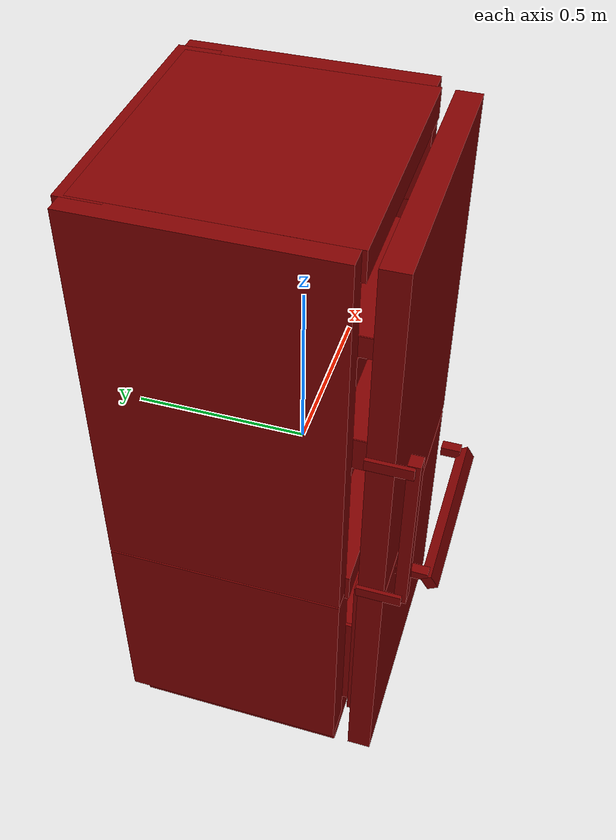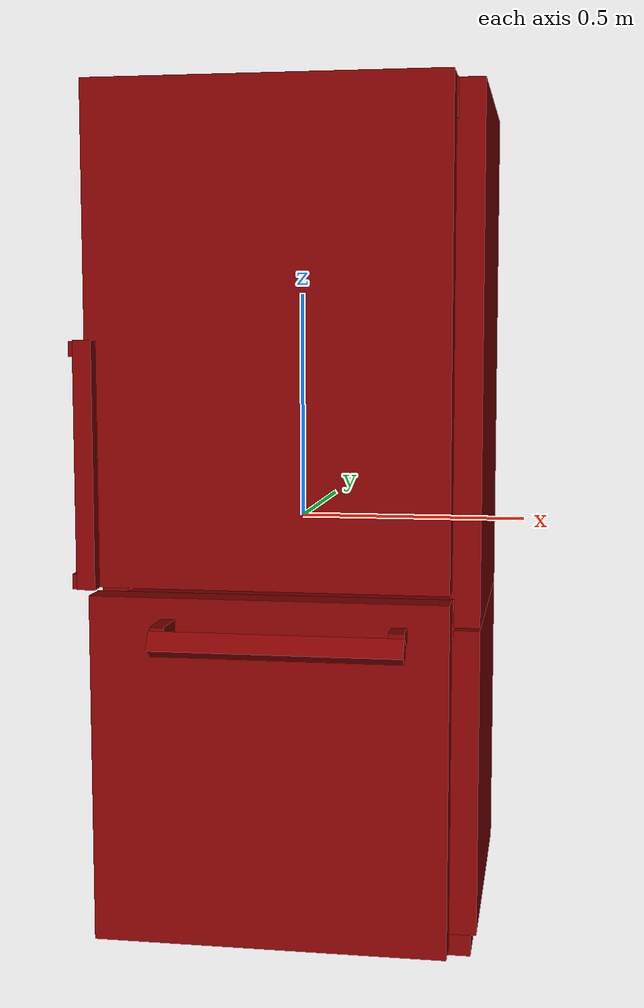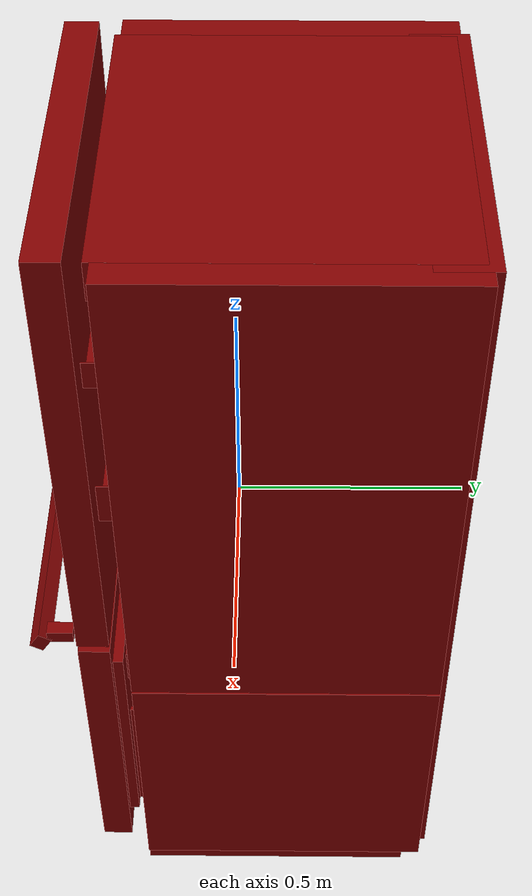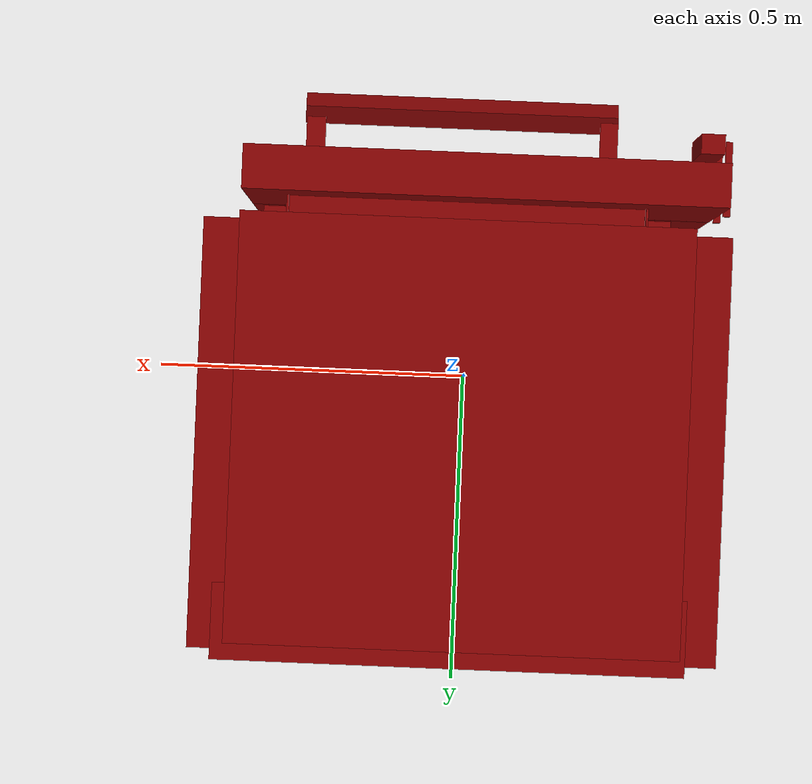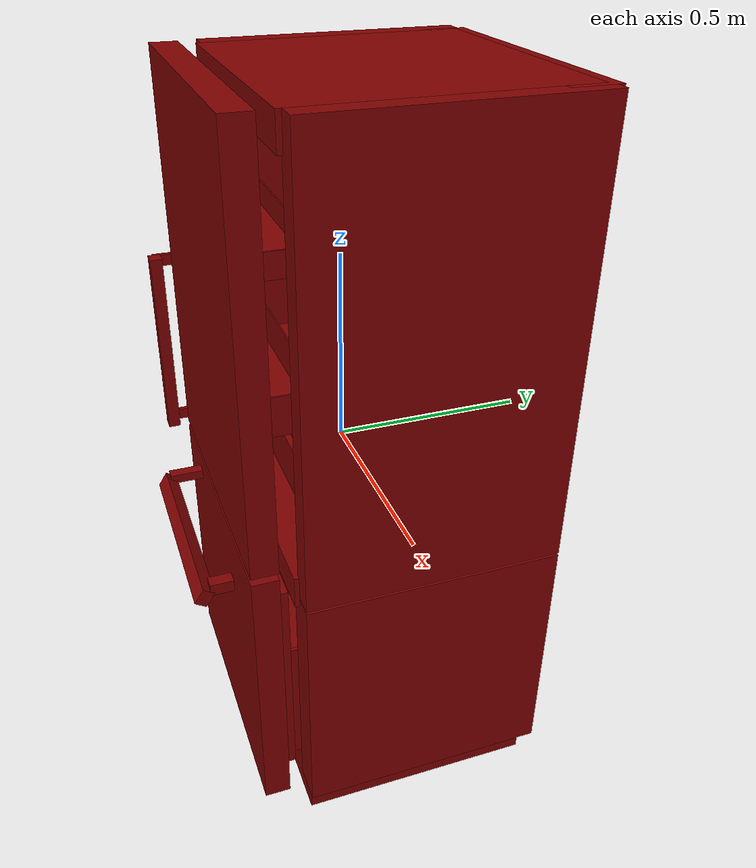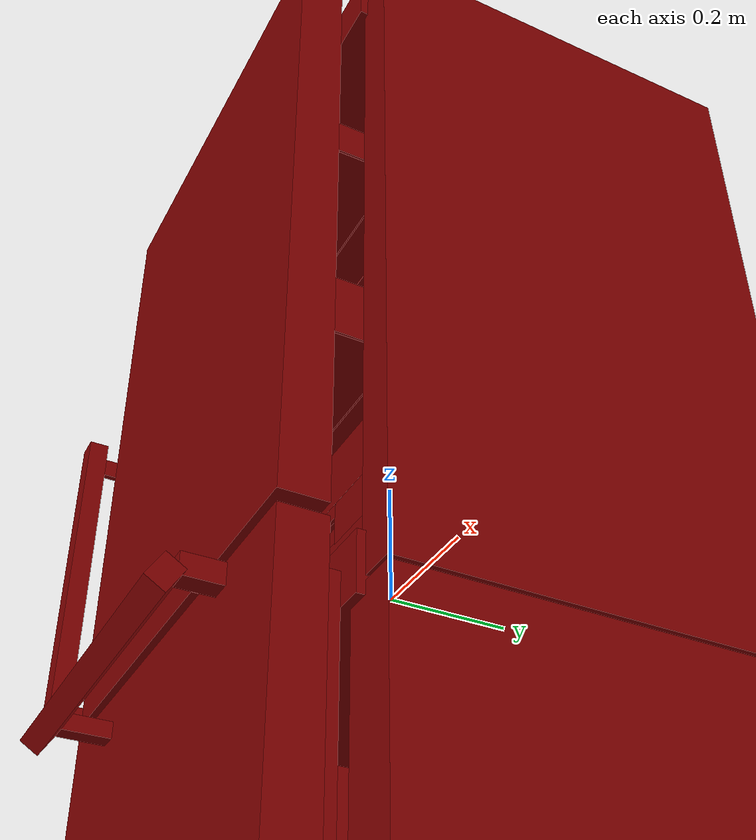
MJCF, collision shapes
<?xml version='1.0' encoding='UTF-8'?>
<mujoco model="model">
  <option timestep="0.005" gravity="0.0 0.0 -9.81"/>
  <compiler angle="radian"/>
  <asset>
    <mesh file="visuals/freezer0.obj" name="freezer0_vis"/>
    <mesh file="visuals/fridge_door.obj" name="fridge_door_vis"/>
    <mesh file="visuals/fridge_door_Clear.obj" name="fridge_door_Clear_vis"/>
    <mesh file="visuals/fridge_drawer0.obj" name="fridge_drawer0_vis"/>
    <mesh file="visuals/Body001.obj" name="Body001_vis"/>
    <mesh file="visuals/Body001_Clear.obj" name="Body001_Clear_vis"/>
    <texture file="visuals/T_BC001.png" name="Body001_material" type="2d"/>
    <material name="Body001_material" rgba="1 1 1 1.0" texture="Body001_material" shininess="0.1" specular="4"/>
    <texture file="visuals/T_BC001.png" name="freezer0_material" type="2d"/>
    <material name="freezer0_material" rgba="1 1 1 1.0" texture="freezer0_material" shininess="0.1" specular="4"/>
    <texture file="visuals/T_BC001.png" name="fridge_door_material" type="2d"/>
    <material name="fridge_door_material" rgba="1 1 1 1.0" texture="fridge_door_material" shininess="0.1" specular="4"/>
    <texture file="visuals/T_BC001.png" name="fridge_door_Clear_material" type="2d"/>
    <material name="fridge_door_Clear_material" rgba="1 1 1 0.699999988079071" texture="fridge_door_Clear_material" shininess="0.2512328028678894" specular="0.3103448502657381"/>
    <texture file="visuals/T_BC001.png" name="fridge_drawer0_material" type="2d"/>
    <material name="fridge_drawer0_material" rgba="1 1 1 1.0" texture="fridge_drawer0_material" shininess="0.1" specular="4"/>
    <texture file="visuals/T_BC001.png" name="Body001_Clear_material" type="2d"/>
    <material name="Body001_Clear_material" rgba="1 1 1 0.699999988079071" texture="Body001_Clear_material" shininess="0.2512328028678894" specular="0.3103448502657381"/>
  </asset>
  <default>
    <default class="visual">
      <geom conaffinity="0" contype="0" group="1" type="mesh"/>
    </default>
    <default class="collision">
      <geom group="0" rgba="0.5 0 0 0.5"/>
    </default>
    <default class="spawn">
      <geom group="0" rgba="1 1 1 0.5" contype="0" conaffinity="0"/>
      <site group="0" rgba="1 1 1 0.5"/>
    </default>
    <default class="region">
      <geom group="1" conaffinity="0" contype="0" rgba="0 1 0 0"/>
    </default>
  </default>
  <worldbody>
    <body>
      <body name="object">
        <geom mesh="Body001_vis" type="mesh" solimp="0.998 0.998 0.001" solref="0.001 1" friction="0.95 0.3 0.1" class="visual" material="Body001_material"/>
        <geom class="collision" type="box" pos="-0.37498215 0.10683183 0.36146265" size="0.03119545616209507 0.33520451188087463 0.5680977702140808" quat="1.0 0.0 0.0 0.0"/>
        <geom class="collision" type="box" pos="0.38533691 0.10683183 0.36146265" size="0.0325012244284153 0.33520451188087463 0.568095326423645" quat="1.0 0.0 0.0 0.0"/>
        <geom class="collision" type="box" pos="0.00624308 0.09642668 0.88848519" size="0.35627835988998413 0.3370806574821472 0.04110235348343849" quat="1.0 0.0 0.0 0.0"/>
        <geom class="collision" type="box" pos="0.00624308 0.09642668 -0.18899992" size="0.35627901554107666 0.3370806574821472 0.043630294501781464" quat="1.0 0.0 0.0 0.0"/>
        <geom class="collision" type="box" pos="0.01057978 0.08701955 -0.86895347" size="0.3950991928577423 0.31481149792671204 0.06105378270149231" quat="1.0 0.0 0.0 0.0"/>
        <geom class="collision" type="box" pos="0.01219927 0.39924748 0.02470104" size="0.36996492743492126 0.06026953458786011 0.9048799872398376" quat="1.0 0.0 0.0 0.0"/>
        <geom class="collision" type="box" pos="0.00371478 0.00521502 0.83800280" size="0.20678451657295227 0.07712382078170776 0.021174384281039238" quat="1.0 0.0 0.0 0.0"/>
        <geom class="collision" type="box" pos="0.00697397 0.10739441 0.50214899" size="0.3410032093524933 0.22730039060115814 0.001821415964514017" quat="1.0 0.0 0.0 0.0"/>
        <geom class="collision" type="box" pos="0.00853892 0.10739441 0.18026702" size="0.334639310836792 0.22730039060115814 0.0018213570583611727" quat="1.0 0.0 0.0 0.0"/>
        <geom class="collision" type="box" pos="0.37079200 0.10683183 -0.54742235" size="0.04704743251204491 0.33520451188087463 0.33482035994529724" quat="1.0 0.0 0.0 0.0"/>
        <geom class="collision" type="box" pos="-0.35940635 0.10683183 -0.54742235" size="0.04677264764904976 0.33520451188087463 0.33482134342193604" quat="1.0 0.0 0.0 0.0"/>
        <body name="freezer0">
          <geom class="region" name="reg_freezer0" type="box" pos="0.008230729999999992 0.012634525000000008 -0.60733554" size="0.29248737999999996 0.241976305 0.17986314000000003"/>
          <joint axis="0.0 -1.0 0.0" pos="0.00597213 -0.08789717 -0.51584709" limited="true" name="freezer0_door_joint" range="0.0 0.5" type="slide" damping="1" frictionloss="1" armature=".01" stiffness="0.05"/>
          <geom mesh="freezer0_vis" type="mesh" solimp="0.998 0.998 0.001" solref="0.001 1" friction="0.95 0.3 0.1" class="visual" material="freezer0_material"/>
          <geom class="collision" type="box" pos="-0.01937570 -0.30954974 -0.51580966" size="0.3811870217323303 0.03464878723025322 0.37754806876182556" quat="1.0 0.0 0.0 0.0" name="freezer0_door_main"/>
          <geom class="collision" type="box" pos="0.00278338 -0.26311429 -0.49932554" size="0.34181585907936096 0.011310269124805927 0.30125892162323" quat="1.0 0.0 0.0 0.0"/>
          <geom class="collision" type="box" pos="-0.30114576 0.00350488 -0.61156356" size="0.004962758161127567 0.2570781707763672 0.18902094662189484" quat="1.0 0.0 0.0 0.0"/>
          <geom class="collision" type="box" pos="0.31010330 0.00350492 -0.61156356" size="0.004962770268321037 0.2570785582065582 0.18902094662189484" quat="1.0 0.0 0.0 0.0"/>
          <geom class="collision" type="box" pos="0.00044368 0.26494520 -0.61156356" size="0.30573034286499023 0.005501435603946447 0.18902094662189484" quat="1.0 0.0 0.0 0.0"/>
          <geom class="collision" type="box" pos="0.00535845 0.00334557 -0.79693633" size="0.3057314455509186 0.2562575340270996 0.004017821047455072" quat="1.0 0.0 0.0 0.0"/>
          <geom class="collision" type="box" pos="-0.22919912 -0.38848229 -0.19690244" size="0.014942779205739498 0.04655171185731888 0.013089067302644253" quat="1.0 0.0 0.0 0.0" name="freezer0_door_handle_2"/>
          <geom class="collision" type="box" pos="0.26194156 -0.39701479 -0.19849212" size="0.01589740812778473 0.029414836317300797 0.015767445787787437" quat="1.0 0.0 0.0 0.0" name="freezer0_door_handle_1"/>
          <geom class="collision" type="box" pos="0.01794117 -0.44173293 -0.21624349" size="0.2620830833911896 0.0216655433177948 0.016649946570396423" quat="0.8749849796295166 0.48415008187294006 0.0 0.0" name="freezer0_door_handle_main"/>
        </body>
        <body name="fridge_door">
          <joint axis="0.0 0.0 1.0" pos="0.36447525 -0.29339688 0.39571536" limited="true" name="fridge_door_joint" range="0.0 1.5707963267948966" type="hinge" damping="1" frictionloss="1" armature=".01" stiffness="0.05"/>
          <geom mesh="fridge_door_vis" type="mesh" solimp="0.998 0.998 0.001" solref="0.001 1" friction="0.95 0.3 0.1" class="visual" material="fridge_door_material"/>
          <geom class="collision" type="box" pos="0.00859993 -0.14479240 0.61289334" size="0.2844829857349396 0.0019456769805401564 0.03054332546889782" quat="1.0 0.0 0.0 0.0"/>
          <geom class="collision" type="box" pos="0.00859993 -0.21667939 0.58366883" size="0.2844829857349396 0.07154784351587296 0.0014210047665983438" quat="1.0 0.0 0.0 0.0"/>
          <geom class="collision" type="box" pos="-0.27801117 -0.21667939 0.61266774" size="0.0017949444008991122 0.07155442237854004 0.030536163598299026" quat="1.0 0.0 0.0 0.0"/>
          <geom class="collision" type="box" pos="0.29283229 -0.21667939 0.61266774" size="0.001794932410120964 0.07155442237854004 0.030536219477653503" quat="1.0 0.0 0.0 0.0"/>
          <geom class="collision" type="box" pos="0.00859993 -0.14479240 0.26346412" size="0.2844829857349396 0.001945692696608603 0.05010267347097397" quat="1.0 0.0 0.0 0.0"/>
          <geom class="collision" type="box" pos="0.00859993 -0.21667939 0.21468025" size="0.2844829857349396 0.07154873013496399 0.001421006629243493" quat="1.0 0.0 0.0 0.0"/>
          <geom class="collision" type="box" pos="-0.27801117 -0.21667939 0.26323855" size="0.0017949462635442615 0.07155442237854004 0.050094351172447205" quat="1.0 0.0 0.0 0.0"/>
          <geom class="collision" type="box" pos="0.29283229 -0.21667939 0.26323855" size="0.0017949307803064585 0.07155442237854004 0.050094470381736755" quat="1.0 0.0 0.0 0.0"/>
          <geom class="collision" type="box" pos="-0.38644641 -0.38941418 0.14176241" size="0.019419077783823013 0.016224142163991928 0.25703683495521545" quat="1.0 0.0 0.0 0.0" name="fridge_door_handle_main"/>
          <geom class="collision" type="box" pos="-0.01937570 -0.30978586 0.40456060" size="0.3811870217323303 0.03488535434007645 0.5239403247833252" quat="1.0 0.0 0.0 0.0" name="fridge_door_main"/>
          <geom class="collision" type="box" pos="-0.41224080 -0.33347549 -0.10008273" size="0.005623071454465389 0.06038874387741089 0.015767445787787437" quat="1.0 0.0 0.0 0.0" name="fridge_door_handle_2"/>
          <geom class="collision" type="box" pos="-0.41224080 -0.33347549 0.38093626" size="0.005623071454465389 0.06038874387741089 0.015767453238368034" quat="1.0 0.0 0.0 0.0" name="fridge_door_handle_1"/>
          <body name="fridge_door_Clear">
            <geom mesh="fridge_door_Clear_vis" type="mesh" solimp="0.998 0.998 0.001" solref="0.001 1" friction="0.95 0.3 0.1" class="visual" material="fridge_door_Clear_material"/>
            <geom class="collision" type="box" pos="0.00859993 -0.14479240 0.61289334" size="0.2844829857349396 0.0019456769805401564 0.03054332546889782" quat="1.0 0.0 0.0 0.0"/>
            <geom class="collision" type="box" pos="0.00859993 -0.21667939 0.58366883" size="0.2844829857349396 0.07154784351587296 0.0014210047665983438" quat="1.0 0.0 0.0 0.0"/>
            <geom class="collision" type="box" pos="-0.27801117 -0.21667939 0.61266774" size="0.0017949444008991122 0.07155442237854004 0.030536163598299026" quat="1.0 0.0 0.0 0.0"/>
            <geom class="collision" type="box" pos="0.29283229 -0.21667939 0.61266774" size="0.001794932410120964 0.07155442237854004 0.030536219477653503" quat="1.0 0.0 0.0 0.0"/>
            <geom class="collision" type="box" pos="0.00859993 -0.14479240 0.26346412" size="0.2844829857349396 0.001945692696608603 0.05010267347097397" quat="1.0 0.0 0.0 0.0"/>
            <geom class="collision" type="box" pos="0.00859993 -0.21667939 0.21468025" size="0.2844829857349396 0.07154873013496399 0.001421006629243493" quat="1.0 0.0 0.0 0.0"/>
            <geom class="collision" type="box" pos="-0.27801117 -0.21667939 0.26323855" size="0.0017949462635442615 0.07155442237854004 0.050094351172447205" quat="1.0 0.0 0.0 0.0"/>
            <geom class="collision" type="box" pos="0.29283229 -0.21667939 0.26323855" size="0.0017949307803064585 0.07155442237854004 0.050094470381736755" quat="1.0 0.0 0.0 0.0"/>
          </body>
        </body>
        <body name="fridge_drawer0">
          <geom class="region" name="reg_fridge_drawer0" type="box" pos="0.008725960000000005 0.09259087000000002 0.011095829999999994" size="0.27230537 0.20467778 0.11553443999999999"/>
          <joint axis="0.0 -1.0 0.0" pos="0.00765877 0.08214359 0.01506785" limited="true" name="fridge_drawer0_joint" range="0.0 0.5" type="slide" damping="1" frictionloss="1" armature=".01" stiffness="0.05"/>
          <geom mesh="fridge_drawer0_vis" type="mesh" solimp="0.998 0.998 0.001" solref="0.001 1" friction="0.95 0.3 0.1" class="visual" material="fridge_drawer0_material"/>
          <geom class="collision" type="box" pos="0.00861231 -0.13220423 0.11384147" size="0.2942264974117279 0.015158834867179394 0.047440800815820694" quat="1.0 0.0 0.0 0.0"/>
          <geom class="collision" type="box" pos="0.00802649 0.09290544 -0.11368094" size="0.27767202258110046 0.21130329370498657 0.0037513033021241426" quat="1.0 0.0 0.0 0.0"/>
          <geom class="collision" type="box" pos="0.01087599 0.30790026 0.00861796" size="0.27785566449165344 0.005564889870584011 0.12146005779504776" quat="1.0 0.0 0.0 0.0"/>
          <geom class="collision" type="box" pos="-0.27555060 0.09532172 0.00794716" size="0.006036187522113323 0.2138131707906723 0.12078918516635895" quat="1.0 0.0 0.0 0.0"/>
          <geom class="collision" type="box" pos="0.29196811 0.10102713 0.00908123" size="0.006036199163645506 0.21951988339424133 0.12192316353321075" quat="1.0 0.0 0.0 0.0"/>
          <geom class="collision" type="box" pos="0.00861231 -0.13220420 -0.06710216" size="0.2942623496055603 0.015161102637648582 0.06715436279773712" quat="1.0 0.0 0.0 0.0"/>
          <geom class="collision" type="box" pos="-0.16129227 -0.13220423 0.03182351" size="0.12436340749263763 0.015161124058067799 0.03413249924778938" quat="1.0 0.0 0.0 0.0"/>
          <geom class="collision" type="box" pos="0.20334919 -0.13220423 0.03182351" size="0.0983390212059021 0.01516119483858347 0.034132473170757294" quat="1.0 0.0 0.0 0.0"/>
          <geom class="collision" type="box" pos="0.03545672 -0.14485174 0.05484637" size="0.07131639868021011 0.002514158608391881 0.011327694170176983" quat="1.0 0.0 0.0 0.0"/>
          <geom class="collision" type="box" pos="0.03545672 -0.11873006 0.03211670" size="0.07131662964820862 0.001339258742518723 0.03299645707011223" quat="1.0 0.0 0.0 0.0"/>
        </body>
        <body name="Body001_Clear">
          <geom mesh="Body001_Clear_vis" type="mesh" solimp="0.998 0.998 0.001" solref="0.001 1" friction="0.95 0.3 0.1" class="visual" material="Body001_Clear_material"/>
          <geom class="collision" type="box" pos="0.00697397 0.10739441 0.50214899" size="0.3410032093524933 0.22730039060115814 0.001821415964514017" quat="1.0 0.0 0.0 0.0"/>
          <geom class="collision" type="box" pos="0.00853892 0.10739441 0.18026702" size="0.334639310836792 0.22730039060115814 0.0018213570583611727" quat="1.0 0.0 0.0 0.0"/>
        </body>
        <geom class="region" name="reg_fridge_shelf0" type="box" pos="0.0062399999999999956 0.108996795 0.342251005" size="0.33224317000000003 0.224491245 0.15143580499999998"/>
        <geom class="region" name="reg_fridge_shelf1" type="box" pos="0.0062399999999999956 0.108996795 0.662654905" size="0.33224317000000003 0.224491245 0.149784845"/>
        <geom class="region" name="reg_main" type="box" pos="-1.5000000019860238e-08 0.057422575000000003 0.0" size="0.420914485 0.40309442500000003 0.93100013"/>
      </body>
    </body>
  </worldbody>
  <actuator>
    <motor name="freezer0_door_joint_actuator" joint="freezer0_door_joint" gear="50"/>
    <motor name="fridge_door_joint_actuator" joint="fridge_door_joint" gear="50"/>
    <motor name="fridge_drawer0_joint_actuator" joint="fridge_drawer0_joint" gear="50"/>
  </actuator>
</mujoco>
